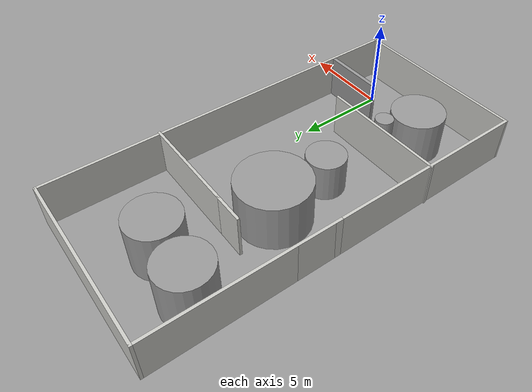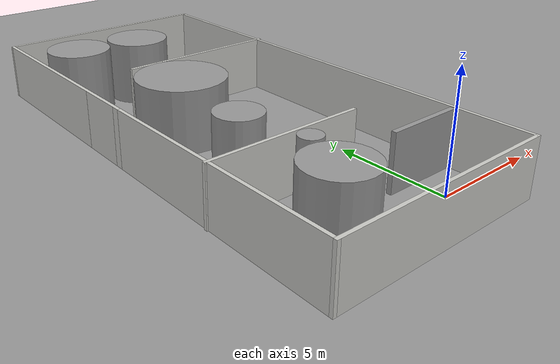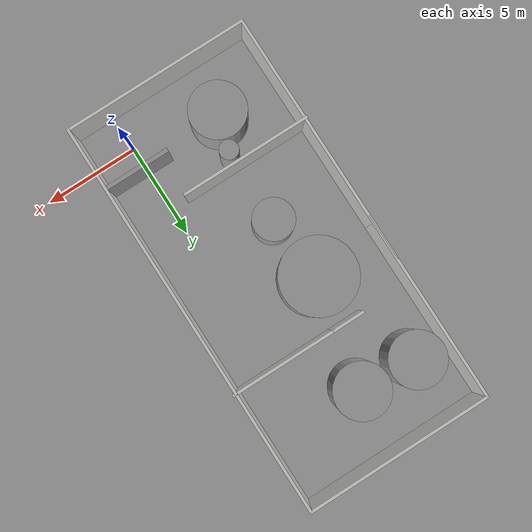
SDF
<sdf version="1.6">
 <world name="default">
  <light name="sun" type="directional">
   <pose>0 0 10 0 -0 0</pose>
   <diffuse>0.8 0.8 0.8 1</diffuse>
   <specular>0.2 0.2 0.2 1</specular>
   <attenuation>
    <range>1000</range>
    <constant>0.9</constant>
    <linear>0.01</linear>
    <quadratic>0.001</quadratic>
   </attenuation>
   <direction>-0.5 0.1 -0.9</direction>
  </light>
  <model name="ground_plane">
   <static>1</static>
   <link name="link">
    <collision name="collision">
     <geometry><plane><normal>0 0 1</normal><size>100 100</size></plane></geometry>
     <surface><friction><ode><mu>100</mu><mu2>50</mu2></ode></friction></surface>
    </collision>
    <visual name="visual">
     <cast_shadows>0</cast_shadows>
     <geometry><plane><normal>0 0 1</normal><size>100 100</size></plane></geometry>
     <material>
      <script><uri>file://media/materials/scripts/gazebo.material</uri><name>Gazebo/Grey</name></script>
     </material>
    </visual>
   </link>
  </model>
  <gravity>0 0 -9.8</gravity>
  <magnetic_field>6e-06 2.3e-05 -4.2e-05</magnetic_field>
  <atmosphere type="adiabatic"/>
  <physics name="default_physics" default="0" type="ode">
   <max_step_size>0.001</max_step_size>
   <real_time_factor>1</real_time_factor>
   <real_time_update_rate>1000</real_time_update_rate>
  </physics>
  <scene><ambient>0.4 0.4 0.4 1</ambient><background>0.7 0.7 0.7 1</background><shadows>1</shadows></scene>
  <audio><device>default</device></audio>
  <spherical_coordinates>
   <surface_model>EARTH_WGS84</surface_model>
   <latitude_deg>0</latitude_deg>
   <longitude_deg>0</longitude_deg>
   <elevation>0</elevation>
   <heading_deg>0</heading_deg>
  </spherical_coordinates>
  <model name="large_ground_plane">
   <link name="link">
    <inertial>
     <mass>44.0611</mass>
     <inertia><ixx>23581.3</ixx><ixy>0</ixy><ixz>0</ixz><iyy>20391.9</iyy><iyz>0</iyz><izz>43973.1</izz></inertia>
    </inertial>
    <visual name="visual">
     <geometry><box><size>74.5232 80.1395 0.007182</size></box></geometry>
     <material>
      <script><name>Gazebo/Grey</name><uri>file://media/materials/scripts/gazebo.material</uri></script>
     </material>
    </visual>
    <collision name="collision">
     <geometry><box><size>74.5232 80.1395 0.007182</size></box></geometry>
     <surface>
      <friction>
       <ode><mu>1</mu><mu2>1</mu2><fdir1>0 0 0</fdir1><slip1>0</slip1><slip2>0</slip2></ode>
       <torsional>
        <coefficient>1</coefficient>
        <patch_radius>0</patch_radius>
        <surface_radius>0</surface_radius>
        <use_patch_radius>1</use_patch_radius>
        <ode><slip>0</slip></ode>
       </torsional>
      </friction>
      <bounce><restitution_coefficient>0</restitution_coefficient><threshold>1e+06</threshold></bounce>
      <contact>
       <collide_without_contact>0</collide_without_contact>
       <collide_without_contact_bitmask>1</collide_without_contact_bitmask>
       <collide_bitmask>1</collide_bitmask>
       <ode>
        <soft_cfm>0</soft_cfm>
        <soft_erp>0.2</soft_erp>
        <kp>1e+13</kp>
        <kd>1</kd>
        <max_vel>0.01</max_vel>
        <min_depth>0</min_depth>
       </ode>
       <bullet>
        <split_impulse>1</split_impulse>
        <split_impulse_penetration_threshold>-0.01</split_impulse_penetration_threshold>
        <soft_cfm>0</soft_cfm>
        <soft_erp>0.2</soft_erp>
        <kp>1e+13</kp>
        <kd>1</kd>
       </bullet>
      </contact>
     </surface>
    </collision>
   </link>
   <static>0</static>
   <pose>5.1818 -4.77239 -0.007367 0 0.000294 0.00033</pose>
  </model>
  <model name="unit_cylinder">
   <pose>-4.43433 1.10714 1.23734 0 -0 0.0005</pose>
   <link name="link">
    <inertial>
     <mass>1</mass>
     <inertia><ixx>0.145833</ixx><ixy>0</ixy><ixz>0</ixz><iyy>0.145833</iyy><iyz>0</iyz><izz>0.125</izz></inertia>
    </inertial>
    <collision name="collision">
     <geometry><cylinder><radius>1.46638</radius><length>2.47469</length></cylinder></geometry>
    </collision>
    <visual name="visual">
     <geometry><cylinder><radius>1.46638</radius><length>2.47469</length></cylinder></geometry>
     <material>
      <script><name>Gazebo/Grey</name><uri>file://media/materials/scripts/gazebo.material</uri></script>
     </material>
    </visual>
    <kinematic>1</kinematic>
   </link>
  </model>
  <model name="unit_cylinder_0">
   <pose>-3.84653 3.03641 1.26341 0 -0 0.000409</pose>
   <link name="link">
    <inertial>
     <mass>1</mass>
     <inertia><ixx>0.145833</ixx><ixy>0</ixy><ixz>0</ixz><iyy>0.145833</iyy><iyz>0</iyz><izz>0.125</izz></inertia>
    </inertial>
    <collision name="collision">
     <geometry><cylinder><radius>0.5</radius><length>2.52685</length></cylinder></geometry>
    </collision>
    <visual name="visual">
     <geometry><cylinder><radius>0.5</radius><length>2.52685</length></cylinder></geometry>
     <material>
      <script><name>Gazebo/Grey</name><uri>file://media/materials/scripts/gazebo.material</uri></script>
     </material>
    </visual>
    <kinematic>1</kinematic>
   </link>
  </model>
  <model name="unit_cylinder_1">
   <pose>-3.86771 6.96019 1.07315 -2e-06 -2e-06 -0.000586</pose>
   <link name="link">
    <inertial>
     <mass>1</mass>
     <inertia><ixx>0.145833</ixx><ixy>0</ixy><ixz>0</ixz><iyy>0.145833</iyy><iyz>0</iyz><izz>0.125</izz></inertia>
    </inertial>
    <collision name="collision">
     <geometry><cylinder><radius>1.07315</radius><length>2.14631</length></cylinder></geometry>
    </collision>
    <visual name="visual">
     <geometry><cylinder><radius>1.07315</radius><length>2.14631</length></cylinder></geometry>
     <material>
      <script><name>Gazebo/Grey</name><uri>file://media/materials/scripts/gazebo.material</uri></script>
     </material>
    </visual>
    <kinematic>1</kinematic>
   </link>
  </model>
  <model name="unit_cylinder_2">
   <pose>-4.15832 10.4131 1.35732 0 -0 6.1e-05</pose>
   <link name="unit_cylinder_2::link">
    <inertial>
     <mass>1</mass>
     <inertia><ixx>0.145833</ixx><ixy>0</ixy><ixz>0</ixz><iyy>0.145833</iyy><iyz>0</iyz><izz>0.125</izz></inertia>
    </inertial>
    <collision name="collision">
     <geometry><cylinder><radius>1.96455</radius><length>2.71465</length></cylinder></geometry>
    </collision>
    <visual name="visual">
     <geometry><cylinder><radius>1.96455</radius><length>2.71465</length></cylinder></geometry>
     <material>
      <script><name>Gazebo/Grey</name><uri>file://media/materials/scripts/gazebo.material</uri></script>
     </material>
    </visual>
    <kinematic>1</kinematic>
   </link>
  </model>
  <model name="unit_cylinder_3">
   <pose>-5.9161 16.1733 1.41951 0 0 -0.000167</pose>
   <link name="link">
    <inertial>
     <mass>1</mass>
     <inertia><ixx>0.145833</ixx><ixy>0</ixy><ixz>0</ixz><iyy>0.145833</iyy><iyz>0</iyz><izz>0.125</izz></inertia>
    </inertial>
    <collision name="collision">
     <geometry><cylinder><radius>1.41952</radius><length>2.83903</length></cylinder></geometry>
    </collision>
    <visual name="visual">
     <geometry><cylinder><radius>1.41952</radius><length>2.83903</length></cylinder></geometry>
     <material>
      <script><name>Gazebo/Grey</name><uri>file://media/materials/scripts/gazebo.material</uri></script>
     </material>
    </visual>
   </link>
  </model>
  <model name="unit_cylinder_3_clone">
   <pose>-2.94001 16.0005 1.41811 0 -0 0.0002</pose>
   <link name="link">
    <inertial>
     <mass>1</mass>
     <inertia><ixx>0.145833</ixx><ixy>0</ixy><ixz>0</ixz><iyy>0.145833</iyy><iyz>0</iyz><izz>0.125</izz></inertia>
    </inertial>
    <collision name="collision">
     <geometry><cylinder><radius>1.41812</radius><length>2.83623</length></cylinder></geometry>
    </collision>
    <visual name="visual">
     <geometry><cylinder><radius>1.41812</radius><length>2.83623</length></cylinder></geometry>
     <material>
      <script><name>Gazebo/Grey</name><uri>file://media/materials/scripts/gazebo.material</uri></script>
     </material>
    </visual>
   </link>
  </model>
  <model name="darpa_medium.world">
   <link name="Wall_10">
    <pose>-4.9466 7.89886 0 0 0 -1.5708</pose>
    <visual name="Wall_10_Visual">
     <pose>0 0 1.25 0 -0 0</pose>
     <geometry><box><size>10.25 0.15 2.5</size></box></geometry>
     <material>
      <script><uri>file://media/materials/scripts/gazebo.material</uri><name>Gazebo/CeilingTiled</name></script>
      <ambient>1 1 1 1</ambient>
     </material>
     <meta><layer>0</layer></meta>
    </visual>
    <collision name="Wall_10_Collision">
     <pose>0 0 1.25 0 -0 0</pose>
     <geometry><box><size>10.25 0.15 2.5</size></box></geometry>
     <surface>
      <friction>
       <ode><mu>1</mu><mu2>1</mu2><fdir1>0 0 0</fdir1><slip1>0</slip1><slip2>0</slip2></ode>
       <torsional>
        <coefficient>1</coefficient>
        <patch_radius>0</patch_radius>
        <surface_radius>0</surface_radius>
        <use_patch_radius>1</use_patch_radius>
        <ode><slip>0</slip></ode>
       </torsional>
      </friction>
      <bounce><restitution_coefficient>0</restitution_coefficient><threshold>1e+06</threshold></bounce>
      <contact>
       <collide_without_contact>0</collide_without_contact>
       <collide_without_contact_bitmask>1</collide_without_contact_bitmask>
       <collide_bitmask>1</collide_bitmask>
       <ode>
        <soft_cfm>0</soft_cfm>
        <soft_erp>0.2</soft_erp>
        <kp>1e+13</kp>
        <kd>1</kd>
        <max_vel>0.01</max_vel>
        <min_depth>0</min_depth>
       </ode>
       <bullet>
        <split_impulse>1</split_impulse>
        <split_impulse_penetration_threshold>-0.01</split_impulse_penetration_threshold>
        <soft_cfm>0</soft_cfm>
        <soft_erp>0.2</soft_erp>
        <kp>1e+13</kp>
        <kd>1</kd>
       </bullet>
      </contact>
     </surface>
    </collision>
   </link>
   <link name="Wall_12">
    <pose>-1.57899 -2.78205 0 0 -0 0</pose>
    <visual name="Wall_12_Visual">
     <pose>0 0 1.25 0 -0 0</pose>
     <geometry><box><size>7 0.15 2.5</size></box></geometry>
     <material>
      <script><uri>file://media/materials/scripts/gazebo.material</uri><name>Gazebo/CeilingTiled</name></script>
      <ambient>1 1 1 1</ambient>
     </material>
     <meta><layer>0</layer></meta>
    </visual>
    <collision name="Wall_12_Collision">
     <pose>0 0 1.25 0 -0 0</pose>
     <geometry><box><size>7 0.15 2.5</size></box></geometry>
     <surface>
      <friction>
       <ode><mu>1</mu><mu2>1</mu2><fdir1>0 0 0</fdir1><slip1>0</slip1><slip2>0</slip2></ode>
       <torsional>
        <coefficient>1</coefficient>
        <patch_radius>0</patch_radius>
        <surface_radius>0</surface_radius>
        <use_patch_radius>1</use_patch_radius>
        <ode><slip>0</slip></ode>
       </torsional>
      </friction>
      <bounce><restitution_coefficient>0</restitution_coefficient><threshold>1e+06</threshold></bounce>
      <contact>
       <collide_without_contact>0</collide_without_contact>
       <collide_without_contact_bitmask>1</collide_without_contact_bitmask>
       <collide_bitmask>1</collide_bitmask>
       <ode>
        <soft_cfm>0</soft_cfm>
        <soft_erp>0.2</soft_erp>
        <kp>1e+13</kp>
        <kd>1</kd>
        <max_vel>0.01</max_vel>
        <min_depth>0</min_depth>
       </ode>
       <bullet>
        <split_impulse>1</split_impulse>
        <split_impulse_penetration_threshold>-0.01</split_impulse_penetration_threshold>
        <soft_cfm>0</soft_cfm>
        <soft_erp>0.2</soft_erp>
        <kp>1e+13</kp>
        <kd>1</kd>
       </bullet>
      </contact>
     </surface>
    </collision>
   </link>
   <link name="Wall_14">
    <pose>2.20399 6.47264 0 0 -0 3.14159</pose>
    <visual name="Wall_14_Visual">
     <pose>0 0 1.25 0 -0 0</pose>
     <geometry><box><size>5.75 0.15 2.5</size></box></geometry>
     <material>
      <script><uri>file://media/materials/scripts/gazebo.material</uri><name>Gazebo/CeilingTiled</name></script>
      <ambient>1 1 1 1</ambient>
     </material>
     <meta><layer>0</layer></meta>
    </visual>
    <collision name="Wall_14_Collision">
     <pose>0 0 1.25 0 -0 0</pose>
     <geometry><box><size>5.75 0.15 2.5</size></box></geometry>
     <surface>
      <friction>
       <ode><mu>1</mu><mu2>1</mu2><fdir1>0 0 0</fdir1><slip1>0</slip1><slip2>0</slip2></ode>
       <torsional>
        <coefficient>1</coefficient>
        <patch_radius>0</patch_radius>
        <surface_radius>0</surface_radius>
        <use_patch_radius>1</use_patch_radius>
        <ode><slip>0</slip></ode>
       </torsional>
      </friction>
      <bounce><restitution_coefficient>0</restitution_coefficient><threshold>1e+06</threshold></bounce>
      <contact>
       <collide_without_contact>0</collide_without_contact>
       <collide_without_contact_bitmask>1</collide_without_contact_bitmask>
       <collide_bitmask>1</collide_bitmask>
       <ode>
        <soft_cfm>0</soft_cfm>
        <soft_erp>0.2</soft_erp>
        <kp>1e+13</kp>
        <kd>1</kd>
        <max_vel>0.01</max_vel>
        <min_depth>0</min_depth>
       </ode>
       <bullet>
        <split_impulse>1</split_impulse>
        <split_impulse_penetration_threshold>-0.01</split_impulse_penetration_threshold>
        <soft_cfm>0</soft_cfm>
        <soft_erp>0.2</soft_erp>
        <kp>1e+13</kp>
        <kd>1</kd>
       </bullet>
      </contact>
     </surface>
    </collision>
   </link>
   <link name="Wall_16">
    <pose>-1.39601 6.47264 0 0 -0 3.14159</pose>
    <visual name="Wall_16_Visual">
     <pose>0 0 1.25 0 -0 0</pose>
     <geometry><box><size>1.75 0.15 2.5</size></box></geometry>
     <material>
      <script><uri>file://media/materials/scripts/gazebo.material</uri><name>Gazebo/CeilingTiled</name></script>
      <ambient>1 1 1 1</ambient>
     </material>
     <meta><layer>0</layer></meta>
    </visual>
    <collision name="Wall_16_Collision">
     <pose>0 0 1.25 0 -0 0</pose>
     <geometry><box><size>1.75 0.15 2.5</size></box></geometry>
     <surface>
      <friction>
       <ode><mu>1</mu><mu2>1</mu2><fdir1>0 0 0</fdir1><slip1>0</slip1><slip2>0</slip2></ode>
       <torsional>
        <coefficient>1</coefficient>
        <patch_radius>0</patch_radius>
        <surface_radius>0</surface_radius>
        <use_patch_radius>1</use_patch_radius>
        <ode><slip>0</slip></ode>
       </torsional>
      </friction>
      <bounce><restitution_coefficient>0</restitution_coefficient><threshold>1e+06</threshold></bounce>
      <contact>
       <collide_without_contact>0</collide_without_contact>
       <collide_without_contact_bitmask>1</collide_without_contact_bitmask>
       <collide_bitmask>1</collide_bitmask>
       <ode>
        <soft_cfm>0</soft_cfm>
        <soft_erp>0.2</soft_erp>
        <kp>1e+13</kp>
        <kd>1</kd>
        <max_vel>0.01</max_vel>
        <min_depth>0</min_depth>
       </ode>
       <bullet>
        <split_impulse>1</split_impulse>
        <split_impulse_penetration_threshold>-0.01</split_impulse_penetration_threshold>
        <soft_cfm>0</soft_cfm>
        <soft_erp>0.2</soft_erp>
        <kp>1e+13</kp>
        <kd>1</kd>
       </bullet>
      </contact>
     </surface>
    </collision>
   </link>
   <link name="Wall_4">
    <pose>-0.021596 -8.40114 0 0 -0 3.14159</pose>
    <visual name="Wall_4_Visual">
     <pose>0 0 1.25 0 -0 0</pose>
     <geometry><box><size>10 0.15 2.5</size></box></geometry>
     <material>
      <script><uri>file://media/materials/scripts/gazebo.material</uri><name>Gazebo/CeilingTiled</name></script>
      <ambient>1 1 1 1</ambient>
     </material>
     <meta><layer>0</layer></meta>
    </visual>
    <collision name="Wall_4_Collision">
     <pose>0 0 1.25 0 -0 0</pose>
     <geometry><box><size>10 0.15 2.5</size></box></geometry>
     <surface>
      <friction>
       <ode><mu>1</mu><mu2>1</mu2><fdir1>0 0 0</fdir1><slip1>0</slip1><slip2>0</slip2></ode>
       <torsional>
        <coefficient>1</coefficient>
        <patch_radius>0</patch_radius>
        <surface_radius>0</surface_radius>
        <use_patch_radius>1</use_patch_radius>
        <ode><slip>0</slip></ode>
       </torsional>
      </friction>
      <bounce><restitution_coefficient>0</restitution_coefficient><threshold>1e+06</threshold></bounce>
      <contact>
       <collide_without_contact>0</collide_without_contact>
       <collide_without_contact_bitmask>1</collide_without_contact_bitmask>
       <collide_bitmask>1</collide_bitmask>
       <ode>
        <soft_cfm>0</soft_cfm>
        <soft_erp>0.2</soft_erp>
        <kp>1e+13</kp>
        <kd>1</kd>
        <max_vel>0.01</max_vel>
        <min_depth>0</min_depth>
       </ode>
       <bullet>
        <split_impulse>1</split_impulse>
        <split_impulse_penetration_threshold>-0.01</split_impulse_penetration_threshold>
        <soft_cfm>0</soft_cfm>
        <soft_erp>0.2</soft_erp>
        <kp>1e+13</kp>
        <kd>1</kd>
       </bullet>
      </contact>
     </surface>
    </collision>
   </link>
   <link name="Wall_5">
    <pose>-4.9466 -1.60114 0 0 -0 1.5708</pose>
    <visual name="Wall_5_Visual">
     <pose>0 0 1.25 0 -0 0</pose>
     <geometry><box><size>13.75 0.15 2.5</size></box></geometry>
     <material>
      <script><uri>file://media/materials/scripts/gazebo.material</uri><name>Gazebo/CeilingTiled</name></script>
      <ambient>1 1 1 1</ambient>
     </material>
     <meta><layer>0</layer></meta>
    </visual>
    <collision name="Wall_5_Collision">
     <pose>0 0 1.25 0 -0 0</pose>
     <geometry><box><size>13.75 0.15 2.5</size></box></geometry>
     <surface>
      <friction>
       <ode><mu>1</mu><mu2>1</mu2><fdir1>0 0 0</fdir1><slip1>0</slip1><slip2>0</slip2></ode>
       <torsional>
        <coefficient>1</coefficient>
        <patch_radius>0</patch_radius>
        <surface_radius>0</surface_radius>
        <use_patch_radius>1</use_patch_radius>
        <ode><slip>0</slip></ode>
       </torsional>
      </friction>
      <bounce><restitution_coefficient>0</restitution_coefficient><threshold>1e+06</threshold></bounce>
      <contact>
       <collide_without_contact>0</collide_without_contact>
       <collide_without_contact_bitmask>1</collide_without_contact_bitmask>
       <collide_bitmask>1</collide_bitmask>
       <ode>
        <soft_cfm>0</soft_cfm>
        <soft_erp>0.2</soft_erp>
        <kp>1e+13</kp>
        <kd>1</kd>
        <max_vel>0.01</max_vel>
        <min_depth>0</min_depth>
       </ode>
       <bullet>
        <split_impulse>1</split_impulse>
        <split_impulse_penetration_threshold>-0.01</split_impulse_penetration_threshold>
        <soft_cfm>0</soft_cfm>
        <soft_erp>0.2</soft_erp>
        <kp>1e+13</kp>
        <kd>1</kd>
       </bullet>
      </contact>
     </surface>
    </collision>
   </link>
   <link name="Wall_8">
    <pose>4.9034 2.27386 0 0 -0 1.5708</pose>
    <visual name="Wall_8_Visual">
     <pose>0 0 1.25 0 -0 0</pose>
     <geometry><box><size>21.5 0.15 2.5</size></box></geometry>
     <material>
      <script><uri>file://media/materials/scripts/gazebo.material</uri><name>Gazebo/CeilingTiled</name></script>
      <ambient>1 1 1 1</ambient>
     </material>
     <meta><layer>0</layer></meta>
    </visual>
    <collision name="Wall_8_Collision">
     <pose>0 0 1.25 0 -0 0</pose>
     <geometry><box><size>21.5 0.15 2.5</size></box></geometry>
     <surface>
      <friction>
       <ode><mu>1</mu><mu2>1</mu2><fdir1>0 0 0</fdir1><slip1>0</slip1><slip2>0</slip2></ode>
       <torsional>
        <coefficient>1</coefficient>
        <patch_radius>0</patch_radius>
        <surface_radius>0</surface_radius>
        <use_patch_radius>1</use_patch_radius>
        <ode><slip>0</slip></ode>
       </torsional>
      </friction>
      <bounce><restitution_coefficient>0</restitution_coefficient><threshold>1e+06</threshold></bounce>
      <contact>
       <collide_without_contact>0</collide_without_contact>
       <collide_without_contact_bitmask>1</collide_without_contact_bitmask>
       <collide_bitmask>1</collide_bitmask>
       <ode>
        <soft_cfm>0</soft_cfm>
        <soft_erp>0.2</soft_erp>
        <kp>1e+13</kp>
        <kd>1</kd>
        <max_vel>0.01</max_vel>
        <min_depth>0</min_depth>
       </ode>
       <bullet>
        <split_impulse>1</split_impulse>
        <split_impulse_penetration_threshold>-0.01</split_impulse_penetration_threshold>
        <soft_cfm>0</soft_cfm>
        <soft_erp>0.2</soft_erp>
        <kp>1e+13</kp>
        <kd>1</kd>
       </bullet>
      </contact>
     </surface>
    </collision>
   </link>
   <link name="Wall_9">
    <pose>-0.021596 12.9489 0 0 -0 3.14159</pose>
    <visual name="Wall_9_Visual">
     <pose>0 0 1.25 0 -0 0</pose>
     <geometry><box><size>10 0.15 2.5</size></box></geometry>
     <material>
      <script><uri>file://media/materials/scripts/gazebo.material</uri><name>Gazebo/CeilingTiled</name></script>
      <ambient>1 1 1 1</ambient>
     </material>
     <meta><layer>0</layer></meta>
    </visual>
    <collision name="Wall_9_Collision">
     <pose>0 0 1.25 0 -0 0</pose>
     <geometry><box><size>10 0.15 2.5</size></box></geometry>
     <surface>
      <friction>
       <ode><mu>1</mu><mu2>1</mu2><fdir1>0 0 0</fdir1><slip1>0</slip1><slip2>0</slip2></ode>
       <torsional>
        <coefficient>1</coefficient>
        <patch_radius>0</patch_radius>
        <surface_radius>0</surface_radius>
        <use_patch_radius>1</use_patch_radius>
        <ode><slip>0</slip></ode>
       </torsional>
      </friction>
      <bounce><restitution_coefficient>0</restitution_coefficient><threshold>1e+06</threshold></bounce>
      <contact>
       <collide_without_contact>0</collide_without_contact>
       <collide_without_contact_bitmask>1</collide_without_contact_bitmask>
       <collide_bitmask>1</collide_bitmask>
       <ode>
        <soft_cfm>0</soft_cfm>
        <soft_erp>0.2</soft_erp>
        <kp>1e+13</kp>
        <kd>1</kd>
        <max_vel>0.01</max_vel>
        <min_depth>0</min_depth>
       </ode>
       <bullet>
        <split_impulse>1</split_impulse>
        <split_impulse_penetration_threshold>-0.01</split_impulse_penetration_threshold>
        <soft_cfm>0</soft_cfm>
        <soft_erp>0.2</soft_erp>
        <kp>1e+13</kp>
        <kd>1</kd>
       </bullet>
      </contact>
     </surface>
    </collision>
   </link>
   <link name="link_0">
    <inertial>
     <mass>2.33437</mass>
     <inertia><ixx>1.87871</ixx><ixy>0</ixy><ixz>0</ixz><iyy>4.17459</iyy><iyz>0</iyz><izz>2.31449</izz></inertia>
    </inertial>
    <pose>3.11865 -5.04824 0.921115 0 -0 0</pose>
    <visual name="visual">
     <geometry><box><size>3.44238 0.218735 3.09997</size></box></geometry>
     <material>
      <lighting>1</lighting>
      <script><uri>file://media/materials/scripts/gazebo.material</uri><name>Gazebo/Grey</name></script>
     </material>
    </visual>
    <collision name="collision">
     <geometry><box><size>3.44238 0.218735 3.09997</size></box></geometry>
     <surface>
      <friction>
       <ode><mu>1</mu><mu2>1</mu2><fdir1>0 0 0</fdir1><slip1>0</slip1><slip2>0</slip2></ode>
       <torsional>
        <coefficient>1</coefficient>
        <patch_radius>0</patch_radius>
        <surface_radius>0</surface_radius>
        <use_patch_radius>1</use_patch_radius>
        <ode><slip>0</slip></ode>
       </torsional>
      </friction>
      <bounce><restitution_coefficient>0</restitution_coefficient><threshold>1e+06</threshold></bounce>
      <contact>
       <collide_without_contact>0</collide_without_contact>
       <collide_without_contact_bitmask>1</collide_without_contact_bitmask>
       <collide_bitmask>1</collide_bitmask>
       <ode>
        <soft_cfm>0</soft_cfm>
        <soft_erp>0.2</soft_erp>
        <kp>1e+13</kp>
        <kd>1</kd>
        <max_vel>0.01</max_vel>
        <min_depth>0</min_depth>
       </ode>
       <bullet>
        <split_impulse>1</split_impulse>
        <split_impulse_penetration_threshold>-0.01</split_impulse_penetration_threshold>
        <soft_cfm>0</soft_cfm>
        <soft_erp>0.2</soft_erp>
        <kp>1e+13</kp>
        <kd>1</kd>
       </bullet>
      </contact>
     </surface>
    </collision>
   </link>
   <static>1</static>
   <pose>-2.79526 6.48957 0 0 -0 0</pose>
  </model>
 </world>
</sdf>
